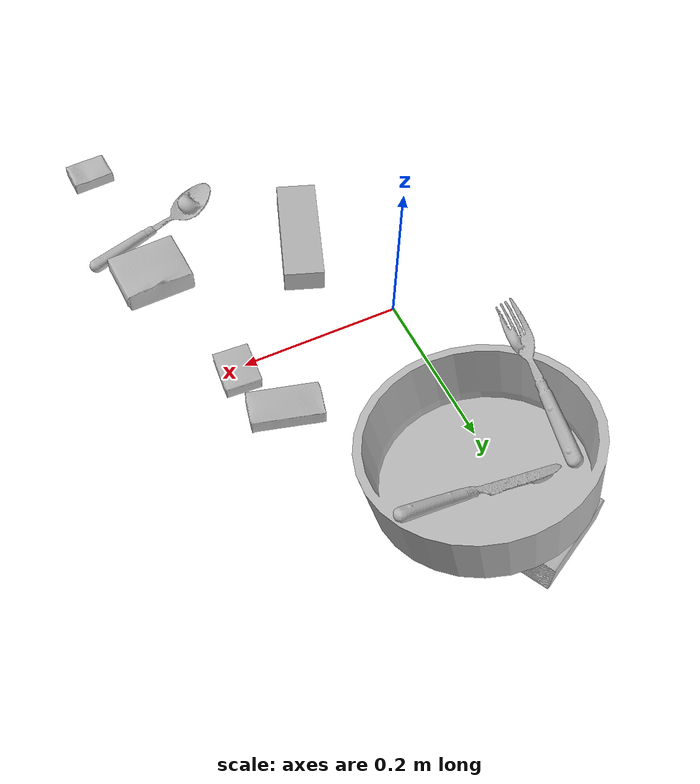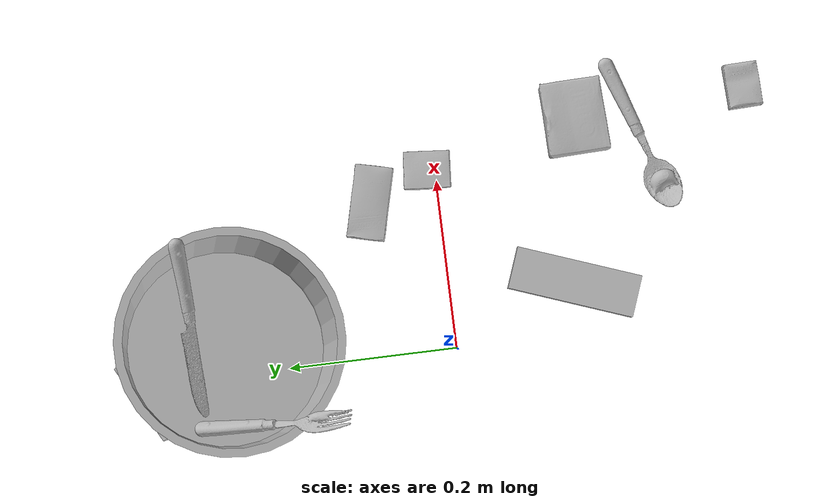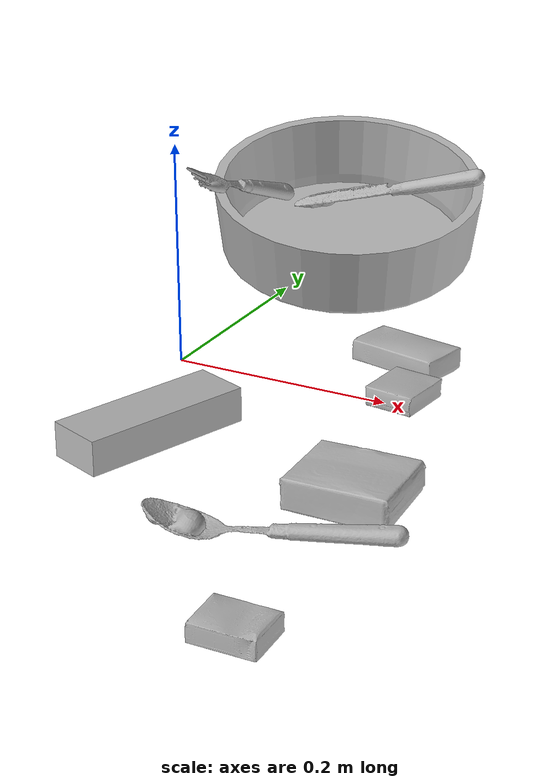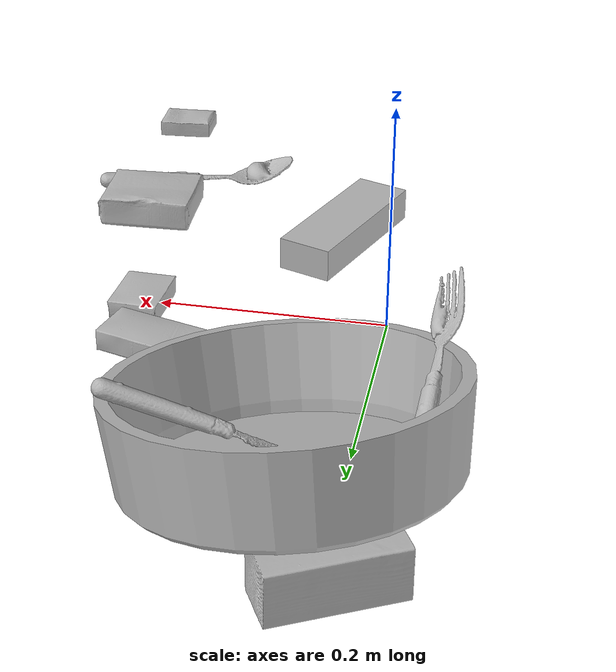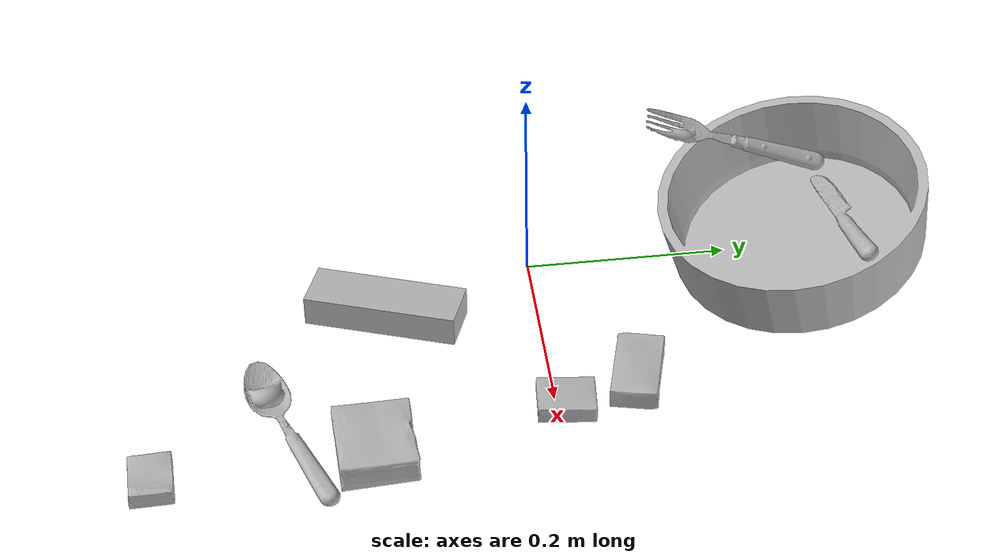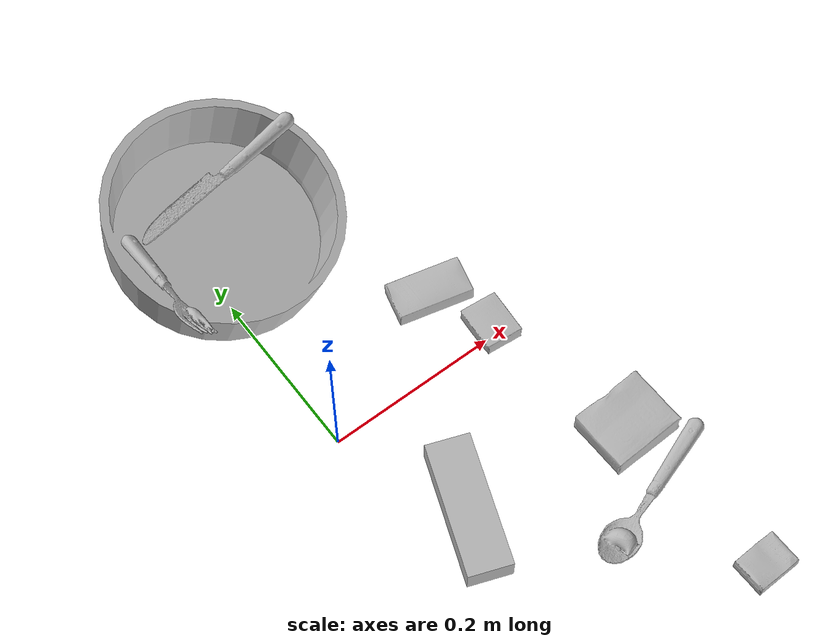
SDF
<sdf version="1.4">
  <world name="default">
    <light name="light1" type="point">
      <pose>0 0 1 0 0 0</pose>
      <diffuse>3 3 3 1</diffuse>
      <specular>3 3 3 1</specular>
    </light>
    <light name="light2" type="point">
      <pose>0 0.5 2 0 0 0</pose>
      <diffuse>1 1 1 1</diffuse>
      <specular>1 1 1 1</specular>
    </light>
    <light name="light3" type="point">
      <pose>0 0.5 2 0 0 0</pose>
      <diffuse>3 3 3 1</diffuse>
      <specular>3 3 3 1</specular>
    </light>
    <scene>
      <ambient>0.7 0.7 0.7</ambient>
    </scene>
    <model name="box11">
      <link name="link_box11">
        <collision name="default">
          <geometry>
            <mesh>
              <uri>model://sugar_box/collision_meshes/collision.obj</uri>
              <scale>0.5 0.5 0.5</scale>
            </mesh>
          </geometry>
          <surface>
            <friction>
              <ode>
                <mu>0.5</mu>
                <mu2>0.5</mu2>
              </ode>
            </friction>
          <contact>
        <ode>
            <max_vel>0</max_vel>
            <min_depth>0.0001</min_depth>
            <kp>1e8</kp>
        </ode>
    </contact></surface>
        </collision>
        <visual name="default">
          <geometry>
            <mesh>
              <uri>model://sugar_box/visual_meshes/visual.dae</uri>
              <scale>0.5 0.5 0.5</scale>
            </mesh>
          </geometry>
        </visual>
        <inertial>
          <mass>0.0727815181016922</mass>
          <pose>0.0005171863595023751 1.924554817378521e-05 -0.00018182402709499002 -0.0004046263004245651 0.001050663405794887 0.002615379021776999</pose>
          <inertia>
            <ixx>1.5160335e-05</ixx>
            <iyy>4.900132e-05</iyy>
            <izz>5.8660433e-05</izz>
            <ixy>0</ixy>
            <ixz>0</ixz>
            <iyz>0</iyz>
          </inertia>
        </inertial>
      </link>
      <pose>0.18323150277137756 0.08150939643383026 0.011399303562939167 0.0007750216601850856 -0.023433169396829122 -0.2494157189182068</pose>
    </model>
    <model name="box12">
      <link name="link_box12">
        <collision name="default">
          <geometry>
            <mesh>
              <uri>model://gelatin_box/collision_meshes/collision.obj</uri>
              <scale>1.0 1.0 1.0</scale>
            </mesh>
          </geometry>
          <surface>
            <friction>
              <ode>
                <mu>0.5</mu>
                <mu2>0.5</mu2>
              </ode>
            </friction>
          <contact>
        <ode>
            <max_vel>0</max_vel>
            <min_depth>0.0001</min_depth>
            <kp>1e8</kp>
        </ode>
    </contact></surface>
        </collision>
        <visual name="default">
          <geometry>
            <mesh>
              <uri>model://gelatin_box/visual_meshes/visual.dae</uri>
              <scale>1.0 1.0 1.0</scale>
            </mesh>
          </geometry>
        </visual>
        <inertial>
          <mass>0.2761145234107971</mass>
          <pose>0.000431961816502735 0.00011156871187267825 -0.0003640321083366871 -0.0010503719804291966 -0.004755819155973465 0.01644055947187314</pose>
          <inertia>
            <ixx>0.00019491432</ixx>
            <iyy>0.00013922628</iyy>
            <izz>0.00029670302</izz>
            <ixy>0</ixy>
            <ixz>0</ixz>
            <iyz>0</iyz>
          </inertia>
        </inertial>
      </link>
      <pose>0.25438714027404785 -0.17139723896980286 0.015168312005698681 0.005597412447760026 -0.007304482852388929 1.5964394028809203</pose>
    </model>
    <model name="box13">
      <link name="link_box13">
        <collision name="default">
          <geometry>
            <mesh>
              <uri>model://jenga/collision_meshes/collision.obj</uri>
              <scale>1.0 1.0 1.0</scale>
            </mesh>
          </geometry>
          <surface>
            <friction>
              <ode>
                <mu>0.5</mu>
                <mu2>0.5</mu2>
              </ode>
            </friction>
          <contact>
        <ode>
            <max_vel>0</max_vel>
            <min_depth>0.0001</min_depth>
            <kp>1e8</kp>
        </ode>
    </contact></surface>
        </collision>
        <visual name="default">
          <geometry>
            <mesh>
              <uri>model://jenga/visual_meshes/visual.dae</uri>
              <scale>1.0 1.0 1.0</scale>
            </mesh>
          </geometry>
        </visual>
        <inertial>
          <mass>0.30891793966293335</mass>
          <pose>-2.502855807051674e-07 -0.0001025000965455547 -4.0923401684267446e-05 0.0 -7.34215461761844e-07 0.0</pose>
          <inertia>
            <ixx>8.548509e-05</ixx>
            <iyy>0.00057924463</iyy>
            <izz>0.0006183929</izz>
            <ixy>0</ixy>
            <ixz>0</ixz>
            <iyz>0</iyz>
          </inertia>
        </inertial>
      </link>
      <pose>0.060350775718688965 -0.14680150151252747 0.014999998733401299 3.785453377523952e-08 -8.77354338181749e-09 -1.9248471302917047</pose>
    </model>
    <model name="box21">
      <link name="link_box21">
        <collision name="default">
          <geometry>
            <mesh>
              <uri>model://pudding_box/collision_meshes/collision.obj</uri>
              <scale>0.5 0.5 0.5</scale>
            </mesh>
          </geometry>
          <surface>
            <friction>
              <ode>
                <mu>0.5</mu>
                <mu2>0.5</mu2>
              </ode>
            </friction>
          <contact>
        <ode>
            <max_vel>0</max_vel>
            <min_depth>0.0001</min_depth>
            <kp>1e8</kp>
        </ode>
    </contact></surface>
        </collision>
        <visual name="default">
          <geometry>
            <mesh>
              <uri>model://pudding_box/visual_meshes/visual.dae</uri>
              <scale>0.5 0.5 0.5</scale>
            </mesh>
          </geometry>
        </visual>
        <inertial>
          <mass>0.049023520201444626</mass>
          <pose>0.0002447411243338138 0.00040339428232982755 -0.0002594413817860186 0.005213100395594636 -0.006603798704538055 0.020079825164231697</pose>
          <inertia>
            <ixx>1.3854642e-05</ixx>
            <iyy>9.321502e-06</iyy>
            <izz>2.046e-05</izz>
            <ixy>0</ixy>
            <ixz>0</ixz>
            <iyz>0</iyz>
          </inertia>
        </inertial>
      </link>
      <pose>0.21363967657089233 0.00972282700240612 0.009862903505563736 0.02234846705379209 -0.011391691331164026 3.0599304656006905</pose>
    </model>
    <model name="box22">
      <link name="link_box22">
        <collision name="default">
          <geometry>
            <mesh>
              <uri>model://wood_block/collision_meshes/collision.obj</uri>
              <scale>0.5 0.5 0.5</scale>
            </mesh>
          </geometry>
          <surface>
            <friction>
              <ode>
                <mu>0.5</mu>
                <mu2>0.5</mu2>
              </ode>
            </friction>
          <contact>
        <ode>
            <max_vel>0</max_vel>
            <min_depth>0.0001</min_depth>
            <kp>1e8</kp>
        </ode>
    </contact></surface>
        </collision>
        <visual name="default">
          <geometry>
            <mesh>
              <uri>model://wood_block/visual_meshes/visual.dae</uri>
              <scale>0.5 0.5 0.5</scale>
            </mesh>
          </geometry>
        </visual>
        <inertial>
          <mass>0.3074011206626892</mass>
          <pose>-2.9066577553749084e-06 -0.000285404734313488 0.00013204291462898254 -0.05220975528717129 -0.005192695583989696 -0.0068613793241849635</pose>
          <inertia>
            <ixx>0.00010283729</ixx>
            <iyy>0.00032486304</iyy>
            <izz>0.0003236479</izz>
            <ixy>0</ixy>
            <ixz>0</ixz>
            <iyz>0</iyz>
          </inertia>
        </inertial>
      </link>
      <pose>-0.009555992670357227 0.35706090927124023 0.022680537775158882 -3.774604528133383e-05 0.008575766832868328 0.48695171891345596</pose>
    </model>
    <model name="box23">
      <link name="link_box23">
        <collision name="default">
          <geometry>
            <mesh>
              <uri>model://cracker_box/collision_meshes/collision.obj</uri>
              <scale>0.25 0.25 0.25</scale>
            </mesh>
          </geometry>
          <surface>
            <friction>
              <ode>
                <mu>0.5</mu>
                <mu2>0.5</mu2>
              </ode>
            </friction>
          <contact>
        <ode>
            <max_vel>0</max_vel>
            <min_depth>0.0001</min_depth>
            <kp>1e8</kp>
        </ode>
    </contact></surface>
        </collision>
        <visual name="default">
          <geometry>
            <mesh>
              <uri>model://cracker_box/visual_meshes/visual.dae</uri>
              <scale>0.25 0.25 0.25</scale>
            </mesh>
          </geometry>
        </visual>
        <inertial>
          <mass>0.04833315312862396</mass>
          <pose>0.00023660357692278922 6.358561950037256e-05 -0.00042573834070935845 -0.0003162077466025917 -0.011106490531569568 0.002546795235651085</pose>
          <inertia>
            <ixx>7.683624e-06</ixx>
            <iyy>1.268717e-05</iyy>
            <izz>1.8105757e-05</izz>
            <ixy>0</ixy>
            <ixz>0</ixz>
            <iyz>0</iyz>
          </inertia>
        </inertial>
      </link>
      <pose>0.26791781187057495 -0.37454235553741455 0.009096026420593262 -0.01405051089105843 -0.00501661828263621 -3.111663838715605</pose>
    </model>
    <model name="plate1">
      <link name="link_plate1">
        <collision name="default">
          <geometry>
            <mesh>
              <uri>model://pan_tefal/collision_meshes/collision.obj</uri>
              <scale>1.0 1.0 1.0</scale>
            </mesh>
          </geometry>
          <surface>
            <friction>
              <ode>
                <mu>0.5</mu>
                <mu2>0.5</mu2>
              </ode>
            </friction>
          <contact>
        <ode>
            <max_vel>0</max_vel>
            <min_depth>0.0001</min_depth>
            <kp>1e8</kp>
        </ode>
    </contact></surface>
        </collision>
        <visual name="default">
          <geometry>
            <mesh>
              <uri>model://pan_tefal/visual_meshes/visual.dae</uri>
              <scale>1.0 1.0 1.0</scale>
            </mesh>
          </geometry>
        </visual>
        <inertial>
          <mass>1.5598481893539429</mass>
          <pose>-0.0001800245518097654 3.279111842857674e-05 -0.008514934219419956 0.0008190275877392404 -0.0003301333888364595 -0.33185859522575717</pose>
          <inertia>
            <ixx>0.010767555</ixx>
            <iyy>0.010836974</iyy>
            <izz>0.019820997</izz>
            <ixy>0</ixy>
            <ixz>0</ixz>
            <iyz>0</iyz>
          </inertia>
        </inertial>
      </link>
      <pose>0.03620400279760361 0.2625233232975006 0.06443184614181519 0.227858822078821 -0.02644180495007635 0.6386792569084552</pose>
    </model>
    <model name="silverware1">
      <link name="link_silverware1">
        <collision name="default">
          <geometry>
            <mesh>
              <uri>model://fork/collision_meshes/collision.obj</uri>
              <scale>1.0 1.0 1.0</scale>
            </mesh>
          </geometry>
          <surface>
            <friction>
              <ode>
                <mu>0.5</mu>
                <mu2>0.5</mu2>
              </ode>
            </friction>
          <contact>
        <ode>
            <max_vel>0</max_vel>
            <min_depth>0.0001</min_depth>
            <kp>1e8</kp>
        </ode>
    </contact></surface>
        </collision>
        <visual name="default">
          <geometry>
            <mesh>
              <uri>model://fork/visual_meshes/visual.dae</uri>
              <scale>1.0 1.0 1.0</scale>
            </mesh>
          </geometry>
        </visual>
        <inertial>
          <mass>0.024598950520157814</mass>
          <pose>-0.029570043087005615 0.0004658824182115495 0.0003218861820641905 -0.013552328184634912 -0.010977839901754499 0.014453902526732686</pose>
          <inertia>
            <ixx>8.623325e-07</ixx>
            <iyy>6.422079e-05</iyy>
            <izz>6.460647e-05</izz>
            <ixy>0</ixy>
            <ixz>0</ixz>
            <iyz>0</iyz>
          </inertia>
        </inertial>
      </link>
      <pose>-0.06030074506998062 0.2194242924451828 0.09124784916639328 -0.6173435552615528 -0.3369299554743451 -1.62719184861173</pose>
    </model>
    <model name="silverware2">
      <link name="link_silverware2">
        <collision name="default">
          <geometry>
            <mesh>
              <uri>model://knife/collision_meshes/collision.obj</uri>
              <scale>1.0 1.0 1.0</scale>
            </mesh>
          </geometry>
          <surface>
            <friction>
              <ode>
                <mu>0.5</mu>
                <mu2>0.5</mu2>
              </ode>
            </friction>
          <contact>
        <ode>
            <max_vel>0</max_vel>
            <min_depth>0.0001</min_depth>
            <kp>1e8</kp>
        </ode>
    </contact></surface>
        </collision>
        <visual name="default">
          <geometry>
            <mesh>
              <uri>model://knife/visual_meshes/visual.dae</uri>
              <scale>1.0 1.0 1.0</scale>
            </mesh>
          </geometry>
        </visual>
        <inertial>
          <mass>0.03473280370235443</mass>
          <pose>-0.02378525584936142 0.0015275126788765192 5.062021955382079e-05 0.0730594717304457 0.017248417183571667 -0.007409821049452296</pose>
          <inertia>
            <ixx>9.858578e-07</ixx>
            <iyy>0.00013343782</iyy>
            <izz>0.00013375531</izz>
            <ixy>0</ixy>
            <ixz>0</ixz>
            <iyz>0</iyz>
          </inertia>
        </inertial>
      </link>
      <pose>0.060178741812705994 0.30350548028945923 0.08108904957771301 -0.4525423046161717 0.27173759570956146 -3.128386385856935</pose>
    </model>
    <model name="silverware3">
      <link name="link_silverware3">
        <collision name="default">
          <geometry>
            <mesh>
              <uri>model://spoon/collision_meshes/collision.obj</uri>
              <scale>1.0 1.0 1.0</scale>
            </mesh>
          </geometry>
          <surface>
            <friction>
              <ode>
                <mu>0.5</mu>
                <mu2>0.5</mu2>
              </ode>
            </friction>
          <contact>
        <ode>
            <max_vel>0</max_vel>
            <min_depth>0.0001</min_depth>
            <kp>1e8</kp>
        </ode>
    </contact></surface>
        </collision>
        <visual name="default">
          <geometry>
            <mesh>
              <uri>model://spoon/visual_meshes/visual.dae</uri>
              <scale>1.0 1.0 1.0</scale>
            </mesh>
          </geometry>
        </visual>
        <inertial>
          <mass>0.02618301659822464</mass>
          <pose>-0.0055263168178498745 -0.00160341733135283 -0.0007271658978424966 0.035216710647368914 -0.039065848798616645 0.0061506127138874515</pose>
          <inertia>
            <ixx>1.4563418e-06</ixx>
            <iyy>9.96255e-05</iyy>
            <izz>0.000100343714</izz>
            <ixy>0</ixy>
            <ixz>0</ixz>
            <iyz>0</iyz>
          </inertia>
        </inertial>
      </link>
      <pose>0.226771280169487 -0.24759343266487122 0.008385262452065945 0.006731828485609175 0.02689299067208917 -2.8138238618703433</pose>
    </model>
  <physics type="ode">
      <max_contacts>50</max_contacts>
      <ode>
        <solver>
          <type>quick</type>
          <iters>75</iters>
        </solver>
        <constraints>
          <contact_max_correcting_vel>0</contact_max_correcting_vel>
          <contact_surface_layer>0</contact_surface_layer>
        </constraints>
      </ode>
    </physics></world>
</sdf>
